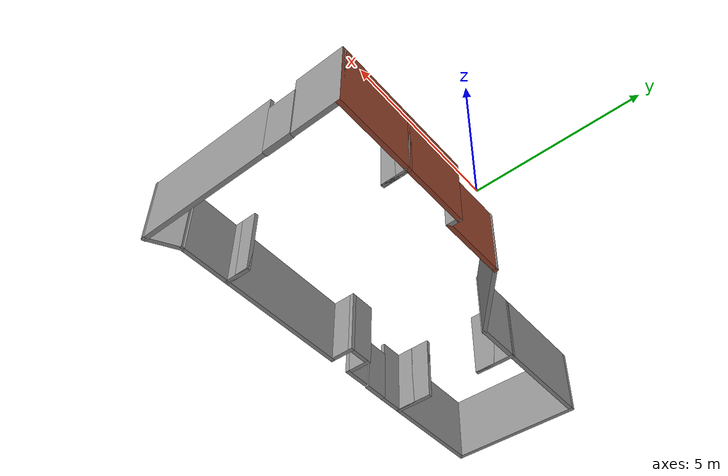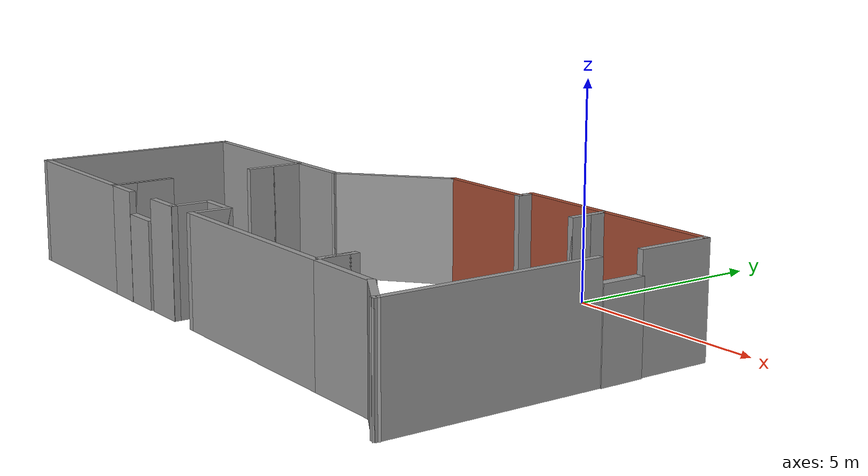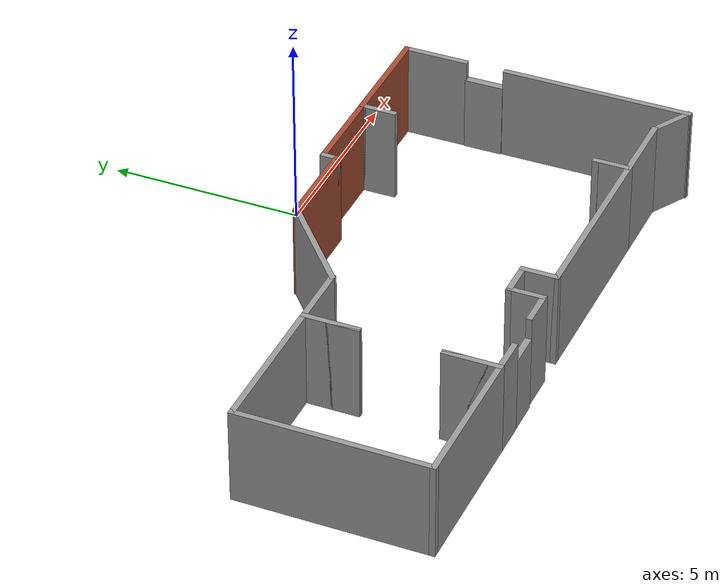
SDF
<?xml version='1.0'?>
<sdf version='1.6'>
  <model name='apartment'>
    <pose frame=''>-2.92761 -4.83642 0 0 -0 0</pose>
    <link name='Door_0'>
      <collision name='Door_0_Collision'>
        <geometry>
          <box>
            <size>1.01959 0.2 2</size>
          </box>
        </geometry>
        <pose frame=''>0 0 1 0 -0 0</pose>
      </collision>
      <visual name='Door_0_Visual'>
        <pose frame=''>0 0 1 0 -0 0</pose>
        <geometry>
          <box>
            <size>1.01959 0.2 2</size>
          </box>
        </geometry>
        <material>
          <script>
            <uri>file://media/materials/scripts/gazebo.material</uri>
            <name>Gazebo/Grey</name>
          </script>
        </material>
      </visual>
      <pose frame=''>7.56786 1.65162 0 0 -0 1.57421</pose>
    </link>
    <link name='Door_2'>
      <collision name='Door_2_Collision'>
        <geometry>
          <box>
            <size>0.9 0.17 2</size>
          </box>
        </geometry>
        <pose frame=''>0 0 1 0 -0 0</pose>
      </collision>
      <visual name='Door_2_Visual'>
        <pose frame=''>0 0 1 0 -0 0</pose>
        <geometry>
          <box>
            <size>0.9 0.17 2</size>
          </box>
        </geometry>
        <material>
          <script>
            <uri>file://media/materials/scripts/gazebo.material</uri>
            <name>Gazebo/Grey</name>
          </script>
        </material>
      </visual>
      <pose frame=''>-2.37854 -3.25439 0 0 0 -3.13598</pose>
    </link>
    <link name='Wall_0'>
      <collision name='Wall_0_Collision'>
        <geometry>
          <box>
            <size>2.5 0.15 2.5</size>
          </box>
        </geometry>
        <pose frame=''>0 0 1.25 0 -0 0</pose>
      </collision>
      <visual name='Wall_0_Visual'>
        <pose frame=''>0 0 1.25 0 -0 0</pose>
        <geometry>
          <box>
            <size>2.5 0.15 2.5</size>
          </box>
        </geometry>
        <material>
          <script>
            <uri>file://media/materials/scripts/gazebo.material</uri>
            <name>Gazebo/Bricks</name>
          </script>
          <ambient>1 1 1 1</ambient>
        </material>
        <meta>
          <layer>0</layer>
        </meta>
      </visual>
      <pose frame=''>1.18261 3.45642 0 0 -0 0</pose>
    </link>
    <link name='Wall_1'>
      <collision name='Wall_1_Collision'>
        <geometry>
          <box>
            <size>0.5 0.15 2.5</size>
          </box>
        </geometry>
        <pose frame=''>0 0 1.25 0 -0 0</pose>
      </collision>
      <visual name='Wall_1_Visual'>
        <pose frame=''>0 0 1.25 0 -0 0</pose>
        <geometry>
          <box>
            <size>0.5 0.15 2.5</size>
          </box>
        </geometry>
        <material>
          <script>
            <uri>file://media/materials/scripts/gazebo.material</uri>
            <name>Gazebo/Grey</name>
          </script>
          <ambient>1 1 1 1</ambient>
        </material>
        <meta>
          <layer>0</layer>
        </meta>
      </visual>
      <pose frame=''>2.35761 3.63142 0 0 -0 1.5708</pose>
    </link>
    <link name='Wall_2'>
      <collision name='Wall_2_Collision'>
        <geometry>
          <box>
            <size>2.5 0.15 2.5</size>
          </box>
        </geometry>
        <pose frame=''>0 0 1.25 0 -0 0</pose>
      </collision>
      <visual name='Wall_2_Visual'>
        <pose frame=''>0 0 1.25 0 -0 0</pose>
        <geometry>
          <box>
            <size>2.5 0.15 2.5</size>
          </box>
        </geometry>
        <material>
          <script>
            <uri>file://media/materials/scripts/gazebo.material</uri>
            <name>Gazebo/Bricks</name>
          </script>
          <ambient>1 1 1 1</ambient>
        </material>
        <meta>
          <layer>0</layer>
        </meta>
      </visual>
      <pose frame=''>3.53261 3.80642 0 0 -0 0</pose>
    </link>
    <link name='Wall_3'>
      <collision name='Wall_3_Collision'>
        <geometry>
          <box>
            <size>1 0.15 2.5</size>
          </box>
        </geometry>
        <pose frame=''>0 0 1.25 0 -0 0</pose>
      </collision>
      <visual name='Wall_3_Visual'>
        <pose frame=''>0 0 1.25 0 -0 0</pose>
        <geometry>
          <box>
            <size>1 0.15 2.5</size>
          </box>
        </geometry>
        <material>
          <script>
            <uri>file://media/materials/scripts/gazebo.material</uri>
            <name>Gazebo/Grey</name>
          </script>
          <ambient>1 1 1 1</ambient>
        </material>
        <meta>
          <layer>0</layer>
        </meta>
      </visual>
      <pose frame=''>4.70761 3.38142 0 0 0 -1.5708</pose>
    </link>
    <link name='Wall_4'>
      <collision name='Wall_4_Collision'>
        <geometry>
          <box>
            <size>1 0.15 2.5</size>
          </box>
        </geometry>
        <pose frame=''>0 0 1.25 0 -0 0</pose>
      </collision>
      <visual name='Wall_4_Visual'>
        <pose frame=''>0 0 1.25 0 -0 0</pose>
        <geometry>
          <box>
            <size>1 0.15 2.5</size>
          </box>
        </geometry>
        <material>
          <script>
            <uri>file://media/materials/scripts/gazebo.material</uri>
            <name>Gazebo/Grey</name>
          </script>
          <ambient>1 1 1 1</ambient>
        </material>
        <meta>
          <layer>0</layer>
        </meta>
      </visual>
      <pose frame=''>4.70761 3.38142 0 0 -0 1.5708</pose>
    </link>
    <link name='Wall_40'>
      <collision name='Wall_40_Collision'>
        <geometry>
          <box>
            <size>5 0.15 2.5</size>
          </box>
        </geometry>
        <pose frame=''>0 0 1.25 0 -0 0</pose>
      </collision>
      <visual name='Wall_40_Visual'>
        <pose frame=''>0 0 1.25 0 -0 0</pose>
        <geometry>
          <box>
            <size>5 0.15 2.5</size>
          </box>
        </geometry>
        <material>
          <script>
            <uri>file://media/materials/scripts/gazebo.material</uri>
            <name>Gazebo/Grey</name>
          </script>
          <ambient>1 1 1 1</ambient>
        </material>
        <meta>
          <layer>0</layer>
        </meta>
      </visual>
      <pose frame=''>7.56762 -1.35397 0 0 0 -1.5708</pose>
    </link>
    <link name='Wall_42'>
      <collision name='Wall_42_Collision'>
        <geometry>
          <box>
            <size>1.25 0.15 2.5</size>
          </box>
        </geometry>
        <pose frame=''>0 0 1.25 0 -0 0</pose>
      </collision>
      <visual name='Wall_42_Visual'>
        <pose frame=''>0 0 1.25 0 -0 0</pose>
        <geometry>
          <box>
            <size>1.25 0.15 2.5</size>
          </box>
        </geometry>
        <material>
          <script>
            <uri>file://media/materials/scripts/gazebo.material</uri>
            <name>Gazebo/Grey</name>
          </script>
          <ambient>1 1 1 1</ambient>
        </material>
        <meta>
          <layer>0</layer>
        </meta>
      </visual>
      <pose frame=''>7.09131 -3.50397 0 0 -0 2.61799</pose>
    </link>
    <link name='Wall_43'>
      <collision name='Wall_43_Collision'>
        <geometry>
          <box>
            <size>2 0.15 2.5</size>
          </box>
        </geometry>
        <pose frame=''>0 0 1.25 0 -0 0</pose>
      </collision>
      <visual name='Wall_43_Visual'>
        <pose frame=''>0 0 1.25 0 -0 0</pose>
        <geometry>
          <box>
            <size>2 0.15 2.5</size>
          </box>
        </geometry>
        <material>
          <script>
            <uri>file://media/materials/scripts/gazebo.material</uri>
            <name>Gazebo/Grey</name>
          </script>
          <ambient>1 1 1 1</ambient>
        </material>
        <meta>
          <layer>0</layer>
        </meta>
      </visual>
      <pose frame=''>5.68999 -3.22897 0 0 -0 3.14159</pose>
    </link>
    <link name='Wall_44'>
      <collision name='Wall_44_Collision'>
        <geometry>
          <box>
            <size>1 0.15 2.5</size>
          </box>
        </geometry>
        <pose frame=''>0 0 1.25 0 -0 0</pose>
      </collision>
      <visual name='Wall_44_Visual'>
        <pose frame=''>0 0 1.25 0 -0 0</pose>
        <geometry>
          <box>
            <size>1 0.15 2.5</size>
          </box>
        </geometry>
        <material>
          <script>
            <uri>file://media/materials/scripts/gazebo.material</uri>
            <name>Gazebo/Grey</name>
          </script>
          <ambient>1 1 1 1</ambient>
        </material>
        <meta>
          <layer>0</layer>
        </meta>
      </visual>
      <pose frame=''>4.76499 -2.80397 0 0 -0 1.5708</pose>
    </link>
    <link name='Wall_45'>
      <collision name='Wall_45_Collision'>
        <geometry>
          <box>
            <size>1 0.15 2.5</size>
          </box>
        </geometry>
        <pose frame=''>0 0 1.25 0 -0 0</pose>
      </collision>
      <visual name='Wall_45_Visual'>
        <pose frame=''>0 0 1.25 0 -0 0</pose>
        <geometry>
          <box>
            <size>1 0.15 2.5</size>
          </box>
        </geometry>
        <material>
          <script>
            <uri>file://media/materials/scripts/gazebo.material</uri>
            <name>Gazebo/Grey</name>
          </script>
          <ambient>1 1 1 1</ambient>
        </material>
        <meta>
          <layer>0</layer>
        </meta>
      </visual>
      <pose frame=''>4.76499 -2.80397 0 0 0 -1.5708</pose>
    </link>
    <link name='Wall_46'>
      <collision name='Wall_46_Collision'>
        <geometry>
          <box>
            <size>5 0.15 2.5</size>
          </box>
        </geometry>
        <pose frame=''>0 0 1.25 0 -0 0</pose>
      </collision>
      <visual name='Wall_46_Visual'>
        <pose frame=''>0 0 1.25 0 -0 0</pose>
        <geometry>
          <box>
            <size>5 0.15 2.5</size>
          </box>
        </geometry>
        <material>
          <script>
            <uri>file://media/materials/scripts/gazebo.material</uri>
            <name>Gazebo/Grey</name>
          </script>
          <ambient>1 1 1 1</ambient>
        </material>
        <meta>
          <layer>0</layer>
        </meta>
      </visual>
      <pose frame=''>2.33999 -3.22897 0 0 -0 3.14159</pose>
    </link>
    <link name='Wall_47'>
      <collision name='Wall_47_Collision'>
        <geometry>
          <box>
            <size>1 0.15 2.5</size>
          </box>
        </geometry>
        <pose frame=''>0 0 1.25 0 -0 0</pose>
      </collision>
      <visual name='Wall_47_Visual'>
        <pose frame=''>0 0 1.25 0 -0 0</pose>
        <geometry>
          <box>
            <size>1 0.15 2.5</size>
          </box>
        </geometry>
        <material>
          <script>
            <uri>file://media/materials/scripts/gazebo.material</uri>
            <name>Gazebo/Grey</name>
          </script>
          <ambient>1 1 1 1</ambient>
        </material>
        <meta>
          <layer>0</layer>
        </meta>
      </visual>
      <pose frame=''>-0.085009 -2.80397 0 0 -0 1.5708</pose>
    </link>
    <link name='Wall_48'>
      <collision name='Wall_48_Collision'>
        <geometry>
          <box>
            <size>1 0.15 2.5</size>
          </box>
        </geometry>
        <pose frame=''>0 0 1.25 0 -0 0</pose>
      </collision>
      <visual name='Wall_48_Visual'>
        <pose frame=''>0 0 1.25 0 -0 0</pose>
        <geometry>
          <box>
            <size>1 0.15 2.5</size>
          </box>
        </geometry>
        <material>
          <script>
            <uri>file://media/materials/scripts/gazebo.material</uri>
            <name>Gazebo/Grey</name>
          </script>
          <ambient>1 1 1 1</ambient>
        </material>
        <meta>
          <layer>0</layer>
        </meta>
      </visual>
      <pose frame=''>-0.510009 -2.37897 0 0 -0 3.14159</pose>
    </link>
    <link name='Wall_49'>
      <collision name='Wall_49_Collision'>
        <geometry>
          <box>
            <size>1 0.15 2.5</size>
          </box>
        </geometry>
        <pose frame=''>0 0 1.25 0 -0 0</pose>
      </collision>
      <visual name='Wall_49_Visual'>
        <pose frame=''>0 0 1.25 0 -0 0</pose>
        <geometry>
          <box>
            <size>1 0.15 2.5</size>
          </box>
        </geometry>
        <material>
          <script>
            <uri>file://media/materials/scripts/gazebo.material</uri>
            <name>Gazebo/Grey</name>
          </script>
          <ambient>1 1 1 1</ambient>
        </material>
        <meta>
          <layer>0</layer>
        </meta>
      </visual>
      <pose frame=''>-0.935009 -2.80397 0 0 0 -1.5708</pose>
    </link>
    <link name='Wall_5'>
      <collision name='Wall_5_Collision'>
        <geometry>
          <box>
            <size>3 0.15 2.5</size>
          </box>
        </geometry>
        <pose frame=''>0 0 1.25 0 -0 0</pose>
      </collision>
      <visual name='Wall_5_Visual'>
        <pose frame=''>0 0 1.25 0 -0 0</pose>
        <geometry>
          <box>
            <size>3 0.15 2.5</size>
          </box>
        </geometry>
        <material>
          <script>
            <uri>file://media/materials/scripts/gazebo.material</uri>
            <name>Gazebo/Bricks</name>
          </script>
          <ambient>1 1 1 1</ambient>
        </material>
        <meta>
          <layer>0</layer>
        </meta>
      </visual>
      <pose frame=''>6.13261 3.80642 0 0 -0 0</pose>
    </link>
    <link name='Wall_50'>
      <collision name='Wall_50_Collision'>
        <geometry>
          <box>
            <size>1 0.15 2.5</size>
          </box>
        </geometry>
        <pose frame=''>0 0 1.25 0 -0 0</pose>
      </collision>
      <visual name='Wall_50_Visual'>
        <pose frame=''>0 0 1.25 0 -0 0</pose>
        <geometry>
          <box>
            <size>1 0.15 2.5</size>
          </box>
        </geometry>
        <material>
          <script>
            <uri>file://media/materials/scripts/gazebo.material</uri>
            <name>Gazebo/Grey</name>
          </script>
          <ambient>1 1 1 1</ambient>
        </material>
        <meta>
          <layer>0</layer>
        </meta>
      </visual>
      <pose frame=''>-1.36001 -3.22897 0 0 -0 3.14159</pose>
    </link>
    <link name='Wall_52'>
      <collision name='Wall_52_Collision'>
        <geometry>
          <box>
            <size>1 0.15 2.5</size>
          </box>
        </geometry>
        <pose frame=''>0 0 1.25 0 -0 0</pose>
      </collision>
      <visual name='Wall_52_Visual'>
        <pose frame=''>0 0 1.25 0 -0 0</pose>
        <geometry>
          <box>
            <size>1 0.15 2.5</size>
          </box>
        </geometry>
        <material>
          <script>
            <uri>file://media/materials/scripts/gazebo.material</uri>
            <name>Gazebo/Grey</name>
          </script>
          <ambient>1 1 1 1</ambient>
        </material>
        <meta>
          <layer>0</layer>
        </meta>
      </visual>
      <pose frame=''>-3.32007 -3.27156 0 0 -0 3.14159</pose>
    </link>
    <link name='Wall_53'>
      <collision name='Wall_53_Collision'>
        <geometry>
          <box>
            <size>1.5 0.15 2.5</size>
          </box>
        </geometry>
        <pose frame=''>0 0 1.25 0 -0 0</pose>
      </collision>
      <visual name='Wall_53_Visual'>
        <pose frame=''>0 0 1.25 0 -0 0</pose>
        <geometry>
          <box>
            <size>1.5 0.15 2.5</size>
          </box>
        </geometry>
        <material>
          <script>
            <uri>file://media/materials/scripts/gazebo.material</uri>
            <name>Gazebo/Grey</name>
          </script>
          <ambient>1 1 1 1</ambient>
        </material>
        <meta>
          <layer>0</layer>
        </meta>
      </visual>
      <pose frame=''>-3.74507 -2.59656 0 0 -0 1.5708</pose>
    </link>
    <link name='Wall_54'>
      <collision name='Wall_54_Collision'>
        <geometry>
          <box>
            <size>1.5 0.15 2.5</size>
          </box>
        </geometry>
        <pose frame=''>0 0 1.25 0 -0 0</pose>
      </collision>
      <visual name='Wall_54_Visual'>
        <pose frame=''>0 0 1.25 0 -0 0</pose>
        <geometry>
          <box>
            <size>1.5 0.15 2.5</size>
          </box>
        </geometry>
        <material>
          <script>
            <uri>file://media/materials/scripts/gazebo.material</uri>
            <name>Gazebo/Grey</name>
          </script>
          <ambient>1 1 1 1</ambient>
        </material>
        <meta>
          <layer>0</layer>
        </meta>
      </visual>
      <pose frame=''>-3.74507 -2.59656 0 0 0 -1.5708</pose>
    </link>
    <link name='Wall_55'>
      <collision name='Wall_55_Collision'>
        <geometry>
          <box>
            <size>4 0.15 2.5</size>
          </box>
        </geometry>
        <pose frame=''>0 0 1.25 0 -0 0</pose>
      </collision>
      <visual name='Wall_55_Visual'>
        <pose frame=''>0 0 1.25 0 -0 0</pose>
        <geometry>
          <box>
            <size>4 0.15 2.5</size>
          </box>
        </geometry>
        <material>
          <script>
            <uri>file://media/materials/scripts/gazebo.material</uri>
            <name>Gazebo/Grey</name>
          </script>
          <ambient>1 1 1 1</ambient>
        </material>
        <meta>
          <layer>0</layer>
        </meta>
      </visual>
      <pose frame=''>-5.67007 -3.27156 0 0 -0 3.14159</pose>
    </link>
    <link name='Wall_56'>
      <collision name='Wall_56_Collision'>
        <geometry>
          <box>
            <size>5 0.15 2.5</size>
          </box>
        </geometry>
        <pose frame=''>0 0 1.25 0 -0 0</pose>
      </collision>
      <visual name='Wall_56_Visual'>
        <pose frame=''>0 0 1.25 0 -0 0</pose>
        <geometry>
          <box>
            <size>5 0.15 2.5</size>
          </box>
        </geometry>
        <material>
          <script>
            <uri>file://media/materials/scripts/gazebo.material</uri>
            <name>Gazebo/Grey</name>
          </script>
          <ambient>1 1 1 1</ambient>
        </material>
        <meta>
          <layer>0</layer>
        </meta>
      </visual>
      <pose frame=''>-7.59507 -0.846559 0 0 -0 1.5708</pose>
    </link>
    <link name='Wall_57'>
      <collision name='Wall_57_Collision'>
        <geometry>
          <box>
            <size>4 0.15 2.5</size>
          </box>
        </geometry>
        <pose frame=''>0 0 1.25 0 -0 0</pose>
      </collision>
      <visual name='Wall_57_Visual'>
        <pose frame=''>0 0 1.25 0 -0 0</pose>
        <geometry>
          <box>
            <size>4 0.15 2.5</size>
          </box>
        </geometry>
        <material>
          <script>
            <uri>file://media/materials/scripts/gazebo.material</uri>
            <name>Gazebo/Grey</name>
          </script>
          <ambient>1 1 1 1</ambient>
        </material>
        <meta>
          <layer>0</layer>
        </meta>
      </visual>
      <pose frame=''>-5.67007 1.57844 0 0 -0 0</pose>
    </link>
    <link name='Wall_58'>
      <collision name='Wall_58_Collision'>
        <geometry>
          <box>
            <size>1.5 0.15 2.5</size>
          </box>
        </geometry>
        <pose frame=''>0 0 1.25 0 -0 0</pose>
      </collision>
      <visual name='Wall_58_Visual'>
        <pose frame=''>0 0 1.25 0 -0 0</pose>
        <geometry>
          <box>
            <size>1.5 0.15 2.5</size>
          </box>
        </geometry>
        <material>
          <script>
            <uri>file://media/materials/scripts/gazebo.material</uri>
            <name>Gazebo/Grey</name>
          </script>
          <ambient>1 1 1 1</ambient>
        </material>
        <meta>
          <layer>0</layer>
        </meta>
      </visual>
      <pose frame=''>-3.74507 0.903441 0 0 0 -1.5708</pose>
    </link>
    <link name='Wall_59'>
      <collision name='Wall_59_Collision'>
        <geometry>
          <box>
            <size>1.5 0.15 2.5</size>
          </box>
        </geometry>
        <pose frame=''>0 0 1.25 0 -0 0</pose>
      </collision>
      <visual name='Wall_59_Visual'>
        <pose frame=''>0 0 1.25 0 -0 0</pose>
        <geometry>
          <box>
            <size>1.5 0.15 2.5</size>
          </box>
        </geometry>
        <material>
          <script>
            <uri>file://media/materials/scripts/gazebo.material</uri>
            <name>Gazebo/Grey</name>
          </script>
          <ambient>1 1 1 1</ambient>
        </material>
        <meta>
          <layer>0</layer>
        </meta>
      </visual>
      <pose frame=''>-3.74507 0.903441 0 0 -0 1.5708</pose>
    </link>
    <link name='Wall_6'>
      <collision name='Wall_6_Collision'>
        <geometry>
          <box>
            <size>1.75 0.15 2.5</size>
          </box>
        </geometry>
        <pose frame=''>0 0 1.25 0 -0 0</pose>
      </collision>
      <visual name='Wall_6_Visual'>
        <pose frame=''>0 0 1.25 0 -0 0</pose>
        <geometry>
          <box>
            <size>1.75 0.15 2.5</size>
          </box>
        </geometry>
        <material>
          <script>
            <uri>file://media/materials/scripts/gazebo.material</uri>
            <name>Gazebo/Grey</name>
          </script>
          <ambient>1 1 1 1</ambient>
        </material>
        <meta>
          <layer>0</layer>
        </meta>
      </visual>
      <pose frame=''>7.55761 3.00642 0 0 0 -1.5708</pose>
    </link>
    <link name='Wall_60'>
      <collision name='Wall_60_Collision'>
        <geometry>
          <box>
            <size>1.75 0.15 2.5</size>
          </box>
        </geometry>
        <pose frame=''>0 0 1.25 0 -0 0</pose>
      </collision>
      <visual name='Wall_60_Visual'>
        <pose frame=''>0 0 1.25 0 -0 0</pose>
        <geometry>
          <box>
            <size>1.75 0.15 2.5</size>
          </box>
        </geometry>
        <material>
          <script>
            <uri>file://media/materials/scripts/gazebo.material</uri>
            <name>Gazebo/Grey</name>
          </script>
          <ambient>1 1 1 1</ambient>
        </material>
        <meta>
          <layer>0</layer>
        </meta>
      </visual>
      <pose frame=''>-2.94507 1.57844 0 0 -0 0</pose>
    </link>
    <link name='Wall_61'>
      <collision name='Wall_61_Collision'>
        <geometry>
          <box>
            <size>3.00671 0.15 2.5</size>
          </box>
        </geometry>
        <pose frame=''>0 0 1.25 0 -0 0</pose>
      </collision>
      <visual name='Wall_61_Visual'>
        <pose frame=''>0 0 1.25 0 -0 0</pose>
        <geometry>
          <box>
            <size>3.00671 0.15 2.5</size>
          </box>
        </geometry>
        <material>
          <script>
            <uri>file://media/materials/scripts/gazebo.material</uri>
            <name>Gazebo/Grey</name>
          </script>
          <ambient>1 1 1 1</ambient>
        </material>
        <meta>
          <layer>0</layer>
        </meta>
      </visual>
      <pose frame=''>-1.06873 2.51743 0 0 -0 0.717351</pose>
    </link>
    <static>1</static>
  </model>
</sdf>
